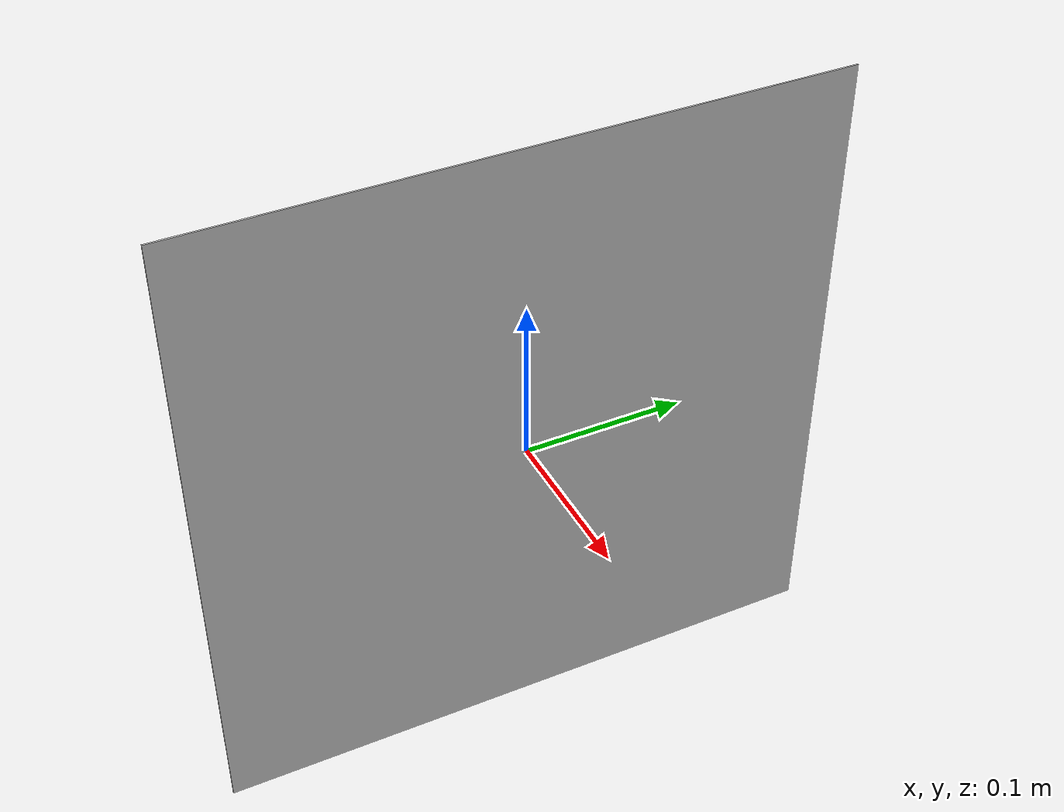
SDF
<sdf version="1.6">
  <model name="whiteboard">
    <static>true</static>
    <link name="link">
      <collision name="collision">
        <geometry>
          <box>
            <size>0.001 0.4 0.4</size>
          </box>
        </geometry>
        <surface>
          <contact>
            <collide_without_contact_bitmask>1</collide_without_contact_bitmask>
          </contact>
        </surface>
      </collision>
      <visual name="visual">
        <geometry>
          <box>
            <size>0.001 0.4 0.4</size>
          </box>
        </geometry>
      </visual>
    </link>
  </model>
</sdf>
